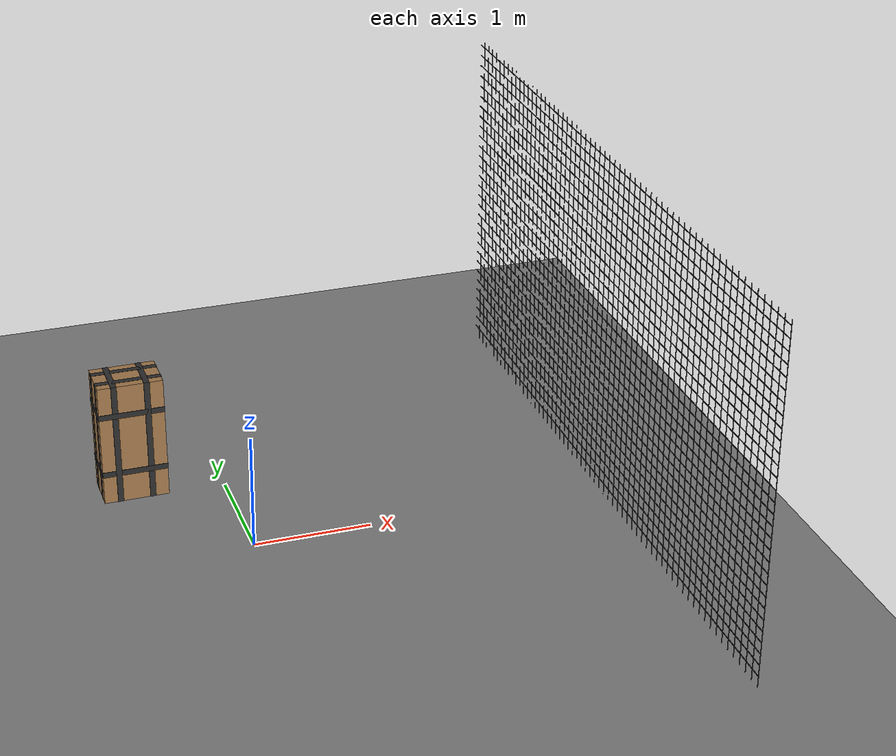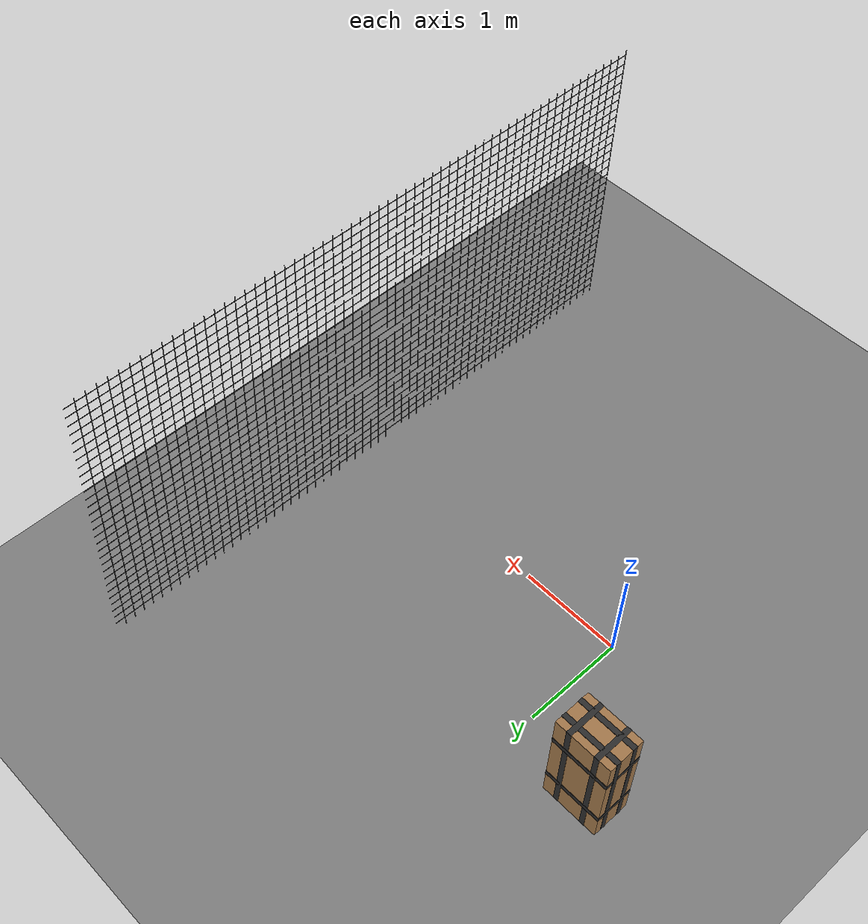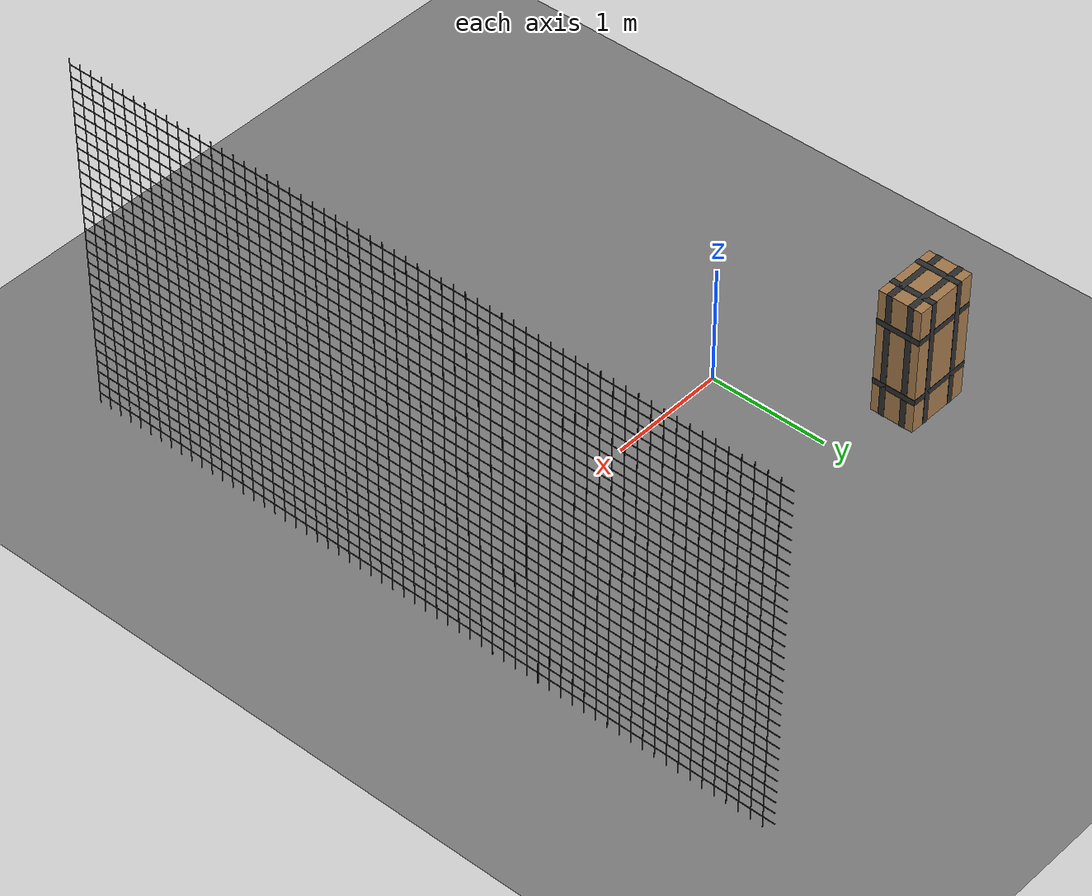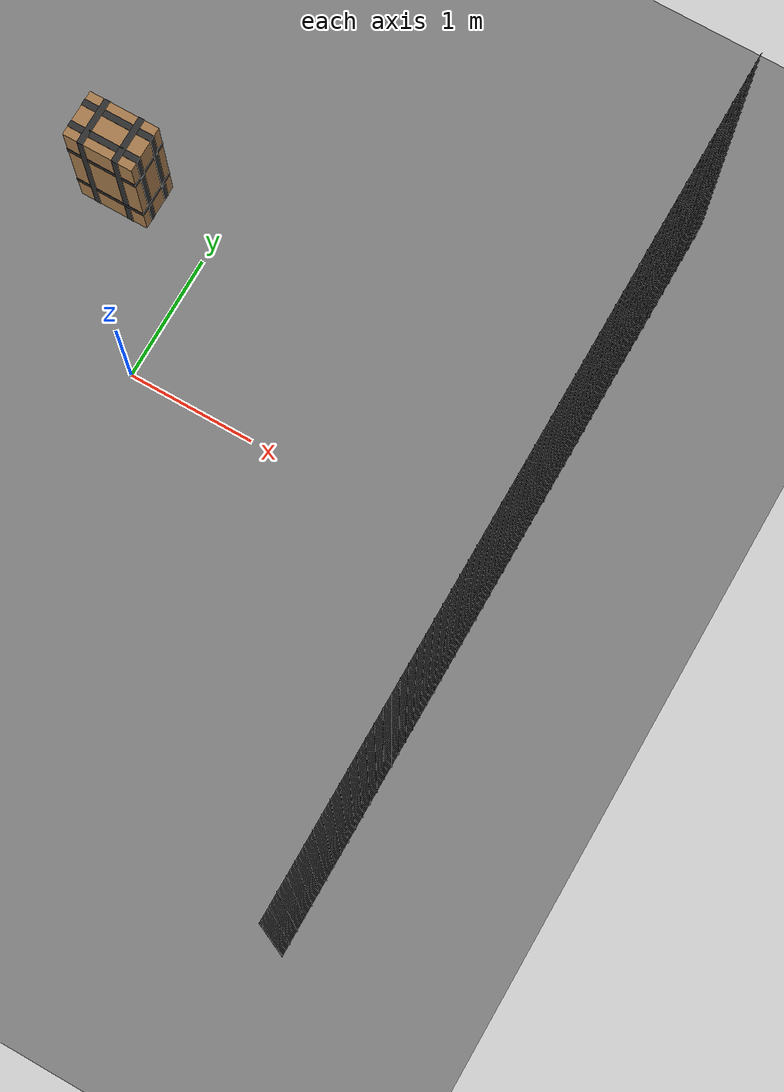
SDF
<sdf version="1.9">
 <world name="ecps295_lowbox_s32">
  <model name="ground_plane">
   <static>true</static>
   <link name="link">
    <collision name="collision">
     <geometry><plane><normal>0 0 1</normal><size>50 50</size></plane></geometry>
    </collision>
    <visual name="visual">
     <geometry><plane><normal>0 0 1</normal><size>50 50</size></plane></geometry>
     <material><ambient>0.5 0.5 0.5 1</ambient><diffuse>0.5 0.5 0.5 1</diffuse></material>
    </visual>
   </link>
  </model>
  <model name="net_e">
   <static>true</static>
   <link name="link">
    <collision name="c">
     <pose>3.050 0.000 1.525 0 0 0</pose>
     <geometry><box><size>0.020 6.100 3.050</size></box></geometry>
    </collision>
    <visual name="v0">
     <pose>3.050 -3.050 1.525 0 0 0.0000</pose>
     <geometry><box><size>0.004 0.004 3.050</size></box></geometry>
     <material><ambient>0.16 0.16 0.16 1</ambient><diffuse>0.16 0.16 0.16 1</diffuse></material>
    </visual>
    <visual name="v1">
     <pose>3.050 -2.950 1.525 0 0 0.0000</pose>
     <geometry><box><size>0.004 0.004 3.050</size></box></geometry>
     <material><ambient>0.16 0.16 0.16 1</ambient><diffuse>0.16 0.16 0.16 1</diffuse></material>
    </visual>
    <visual name="v2">
     <pose>3.050 -2.850 1.525 0 0 0.0000</pose>
     <geometry><box><size>0.004 0.004 3.050</size></box></geometry>
     <material><ambient>0.16 0.16 0.16 1</ambient><diffuse>0.16 0.16 0.16 1</diffuse></material>
    </visual>
    <visual name="v3">
     <pose>3.050 -2.750 1.525 0 0 0.0000</pose>
     <geometry><box><size>0.004 0.004 3.050</size></box></geometry>
     <material><ambient>0.16 0.16 0.16 1</ambient><diffuse>0.16 0.16 0.16 1</diffuse></material>
    </visual>
    <visual name="v4">
     <pose>3.050 -2.650 1.525 0 0 0.0000</pose>
     <geometry><box><size>0.004 0.004 3.050</size></box></geometry>
     <material><ambient>0.16 0.16 0.16 1</ambient><diffuse>0.16 0.16 0.16 1</diffuse></material>
    </visual>
    <visual name="v5">
     <pose>3.050 -2.550 1.525 0 0 0.0000</pose>
     <geometry><box><size>0.004 0.004 3.050</size></box></geometry>
     <material><ambient>0.16 0.16 0.16 1</ambient><diffuse>0.16 0.16 0.16 1</diffuse></material>
    </visual>
    <visual name="v6">
     <pose>3.050 -2.450 1.525 0 0 0.0000</pose>
     <geometry><box><size>0.004 0.004 3.050</size></box></geometry>
     <material><ambient>0.16 0.16 0.16 1</ambient><diffuse>0.16 0.16 0.16 1</diffuse></material>
    </visual>
    <visual name="v7">
     <pose>3.050 -2.350 1.525 0 0 0.0000</pose>
     <geometry><box><size>0.004 0.004 3.050</size></box></geometry>
     <material><ambient>0.16 0.16 0.16 1</ambient><diffuse>0.16 0.16 0.16 1</diffuse></material>
    </visual>
    <visual name="v8">
     <pose>3.050 -2.250 1.525 0 0 0.0000</pose>
     <geometry><box><size>0.004 0.004 3.050</size></box></geometry>
     <material><ambient>0.16 0.16 0.16 1</ambient><diffuse>0.16 0.16 0.16 1</diffuse></material>
    </visual>
    <visual name="v9">
     <pose>3.050 -2.150 1.525 0 0 0.0000</pose>
     <geometry><box><size>0.004 0.004 3.050</size></box></geometry>
     <material><ambient>0.16 0.16 0.16 1</ambient><diffuse>0.16 0.16 0.16 1</diffuse></material>
    </visual>
    <visual name="v10">
     <pose>3.050 -2.050 1.525 0 0 0.0000</pose>
     <geometry><box><size>0.004 0.004 3.050</size></box></geometry>
     <material><ambient>0.16 0.16 0.16 1</ambient><diffuse>0.16 0.16 0.16 1</diffuse></material>
    </visual>
    <visual name="v11">
     <pose>3.050 -1.950 1.525 0 0 0.0000</pose>
     <geometry><box><size>0.004 0.004 3.050</size></box></geometry>
     <material><ambient>0.16 0.16 0.16 1</ambient><diffuse>0.16 0.16 0.16 1</diffuse></material>
    </visual>
    <visual name="v12">
     <pose>3.050 -1.850 1.525 0 0 0.0000</pose>
     <geometry><box><size>0.004 0.004 3.050</size></box></geometry>
     <material><ambient>0.16 0.16 0.16 1</ambient><diffuse>0.16 0.16 0.16 1</diffuse></material>
    </visual>
    <visual name="v13">
     <pose>3.050 -1.750 1.525 0 0 0.0000</pose>
     <geometry><box><size>0.004 0.004 3.050</size></box></geometry>
     <material><ambient>0.16 0.16 0.16 1</ambient><diffuse>0.16 0.16 0.16 1</diffuse></material>
    </visual>
    <visual name="v14">
     <pose>3.050 -1.650 1.525 0 0 0.0000</pose>
     <geometry><box><size>0.004 0.004 3.050</size></box></geometry>
     <material><ambient>0.16 0.16 0.16 1</ambient><diffuse>0.16 0.16 0.16 1</diffuse></material>
    </visual>
    <visual name="v15">
     <pose>3.050 -1.550 1.525 0 0 0.0000</pose>
     <geometry><box><size>0.004 0.004 3.050</size></box></geometry>
     <material><ambient>0.16 0.16 0.16 1</ambient><diffuse>0.16 0.16 0.16 1</diffuse></material>
    </visual>
    <visual name="v16">
     <pose>3.050 -1.450 1.525 0 0 0.0000</pose>
     <geometry><box><size>0.004 0.004 3.050</size></box></geometry>
     <material><ambient>0.16 0.16 0.16 1</ambient><diffuse>0.16 0.16 0.16 1</diffuse></material>
    </visual>
    <visual name="v17">
     <pose>3.050 -1.350 1.525 0 0 0.0000</pose>
     <geometry><box><size>0.004 0.004 3.050</size></box></geometry>
     <material><ambient>0.16 0.16 0.16 1</ambient><diffuse>0.16 0.16 0.16 1</diffuse></material>
    </visual>
    <visual name="v18">
     <pose>3.050 -1.250 1.525 0 0 0.0000</pose>
     <geometry><box><size>0.004 0.004 3.050</size></box></geometry>
     <material><ambient>0.16 0.16 0.16 1</ambient><diffuse>0.16 0.16 0.16 1</diffuse></material>
    </visual>
    <visual name="v19">
     <pose>3.050 -1.150 1.525 0 0 0.0000</pose>
     <geometry><box><size>0.004 0.004 3.050</size></box></geometry>
     <material><ambient>0.16 0.16 0.16 1</ambient><diffuse>0.16 0.16 0.16 1</diffuse></material>
    </visual>
    <visual name="v20">
     <pose>3.050 -1.050 1.525 0 0 0.0000</pose>
     <geometry><box><size>0.004 0.004 3.050</size></box></geometry>
     <material><ambient>0.16 0.16 0.16 1</ambient><diffuse>0.16 0.16 0.16 1</diffuse></material>
    </visual>
    <visual name="v21">
     <pose>3.050 -0.950 1.525 0 0 0.0000</pose>
     <geometry><box><size>0.004 0.004 3.050</size></box></geometry>
     <material><ambient>0.16 0.16 0.16 1</ambient><diffuse>0.16 0.16 0.16 1</diffuse></material>
    </visual>
    <visual name="v22">
     <pose>3.050 -0.850 1.525 0 0 0.0000</pose>
     <geometry><box><size>0.004 0.004 3.050</size></box></geometry>
     <material><ambient>0.16 0.16 0.16 1</ambient><diffuse>0.16 0.16 0.16 1</diffuse></material>
    </visual>
    <visual name="v23">
     <pose>3.050 -0.750 1.525 0 0 0.0000</pose>
     <geometry><box><size>0.004 0.004 3.050</size></box></geometry>
     <material><ambient>0.16 0.16 0.16 1</ambient><diffuse>0.16 0.16 0.16 1</diffuse></material>
    </visual>
    <visual name="v24">
     <pose>3.050 -0.650 1.525 0 0 0.0000</pose>
     <geometry><box><size>0.004 0.004 3.050</size></box></geometry>
     <material><ambient>0.16 0.16 0.16 1</ambient><diffuse>0.16 0.16 0.16 1</diffuse></material>
    </visual>
    <visual name="v25">
     <pose>3.050 -0.550 1.525 0 0 0.0000</pose>
     <geometry><box><size>0.004 0.004 3.050</size></box></geometry>
     <material><ambient>0.16 0.16 0.16 1</ambient><diffuse>0.16 0.16 0.16 1</diffuse></material>
    </visual>
    <visual name="v26">
     <pose>3.050 -0.450 1.525 0 0 0.0000</pose>
     <geometry><box><size>0.004 0.004 3.050</size></box></geometry>
     <material><ambient>0.16 0.16 0.16 1</ambient><diffuse>0.16 0.16 0.16 1</diffuse></material>
    </visual>
    <visual name="v27">
     <pose>3.050 -0.350 1.525 0 0 0.0000</pose>
     <geometry><box><size>0.004 0.004 3.050</size></box></geometry>
     <material><ambient>0.16 0.16 0.16 1</ambient><diffuse>0.16 0.16 0.16 1</diffuse></material>
    </visual>
    <visual name="v28">
     <pose>3.050 -0.250 1.525 0 0 0.0000</pose>
     <geometry><box><size>0.004 0.004 3.050</size></box></geometry>
     <material><ambient>0.16 0.16 0.16 1</ambient><diffuse>0.16 0.16 0.16 1</diffuse></material>
    </visual>
    <visual name="v29">
     <pose>3.050 -0.150 1.525 0 0 0.0000</pose>
     <geometry><box><size>0.004 0.004 3.050</size></box></geometry>
     <material><ambient>0.16 0.16 0.16 1</ambient><diffuse>0.16 0.16 0.16 1</diffuse></material>
    </visual>
    <visual name="v30">
     <pose>3.050 -0.050 1.525 0 0 0.0000</pose>
     <geometry><box><size>0.004 0.004 3.050</size></box></geometry>
     <material><ambient>0.16 0.16 0.16 1</ambient><diffuse>0.16 0.16 0.16 1</diffuse></material>
    </visual>
    <visual name="v31">
     <pose>3.050 0.050 1.525 0 0 0.0000</pose>
     <geometry><box><size>0.004 0.004 3.050</size></box></geometry>
     <material><ambient>0.16 0.16 0.16 1</ambient><diffuse>0.16 0.16 0.16 1</diffuse></material>
    </visual>
    <visual name="v32">
     <pose>3.050 0.150 1.525 0 0 0.0000</pose>
     <geometry><box><size>0.004 0.004 3.050</size></box></geometry>
     <material><ambient>0.16 0.16 0.16 1</ambient><diffuse>0.16 0.16 0.16 1</diffuse></material>
    </visual>
    <visual name="v33">
     <pose>3.050 0.250 1.525 0 0 0.0000</pose>
     <geometry><box><size>0.004 0.004 3.050</size></box></geometry>
     <material><ambient>0.16 0.16 0.16 1</ambient><diffuse>0.16 0.16 0.16 1</diffuse></material>
    </visual>
    <visual name="v34">
     <pose>3.050 0.350 1.525 0 0 0.0000</pose>
     <geometry><box><size>0.004 0.004 3.050</size></box></geometry>
     <material><ambient>0.16 0.16 0.16 1</ambient><diffuse>0.16 0.16 0.16 1</diffuse></material>
    </visual>
    <visual name="v35">
     <pose>3.050 0.450 1.525 0 0 0.0000</pose>
     <geometry><box><size>0.004 0.004 3.050</size></box></geometry>
     <material><ambient>0.16 0.16 0.16 1</ambient><diffuse>0.16 0.16 0.16 1</diffuse></material>
    </visual>
    <visual name="v36">
     <pose>3.050 0.550 1.525 0 0 0.0000</pose>
     <geometry><box><size>0.004 0.004 3.050</size></box></geometry>
     <material><ambient>0.16 0.16 0.16 1</ambient><diffuse>0.16 0.16 0.16 1</diffuse></material>
    </visual>
    <visual name="v37">
     <pose>3.050 0.650 1.525 0 0 0.0000</pose>
     <geometry><box><size>0.004 0.004 3.050</size></box></geometry>
     <material><ambient>0.16 0.16 0.16 1</ambient><diffuse>0.16 0.16 0.16 1</diffuse></material>
    </visual>
    <visual name="v38">
     <pose>3.050 0.750 1.525 0 0 0.0000</pose>
     <geometry><box><size>0.004 0.004 3.050</size></box></geometry>
     <material><ambient>0.16 0.16 0.16 1</ambient><diffuse>0.16 0.16 0.16 1</diffuse></material>
    </visual>
    <visual name="v39">
     <pose>3.050 0.850 1.525 0 0 0.0000</pose>
     <geometry><box><size>0.004 0.004 3.050</size></box></geometry>
     <material><ambient>0.16 0.16 0.16 1</ambient><diffuse>0.16 0.16 0.16 1</diffuse></material>
    </visual>
    <visual name="v40">
     <pose>3.050 0.950 1.525 0 0 0.0000</pose>
     <geometry><box><size>0.004 0.004 3.050</size></box></geometry>
     <material><ambient>0.16 0.16 0.16 1</ambient><diffuse>0.16 0.16 0.16 1</diffuse></material>
    </visual>
    <visual name="v41">
     <pose>3.050 1.050 1.525 0 0 0.0000</pose>
     <geometry><box><size>0.004 0.004 3.050</size></box></geometry>
     <material><ambient>0.16 0.16 0.16 1</ambient><diffuse>0.16 0.16 0.16 1</diffuse></material>
    </visual>
    <visual name="v42">
     <pose>3.050 1.150 1.525 0 0 0.0000</pose>
     <geometry><box><size>0.004 0.004 3.050</size></box></geometry>
     <material><ambient>0.16 0.16 0.16 1</ambient><diffuse>0.16 0.16 0.16 1</diffuse></material>
    </visual>
    <visual name="v43">
     <pose>3.050 1.250 1.525 0 0 0.0000</pose>
     <geometry><box><size>0.004 0.004 3.050</size></box></geometry>
     <material><ambient>0.16 0.16 0.16 1</ambient><diffuse>0.16 0.16 0.16 1</diffuse></material>
    </visual>
    <visual name="v44">
     <pose>3.050 1.350 1.525 0 0 0.0000</pose>
     <geometry><box><size>0.004 0.004 3.050</size></box></geometry>
     <material><ambient>0.16 0.16 0.16 1</ambient><diffuse>0.16 0.16 0.16 1</diffuse></material>
    </visual>
    <visual name="v45">
     <pose>3.050 1.450 1.525 0 0 0.0000</pose>
     <geometry><box><size>0.004 0.004 3.050</size></box></geometry>
     <material><ambient>0.16 0.16 0.16 1</ambient><diffuse>0.16 0.16 0.16 1</diffuse></material>
    </visual>
    <visual name="v46">
     <pose>3.050 1.550 1.525 0 0 0.0000</pose>
     <geometry><box><size>0.004 0.004 3.050</size></box></geometry>
     <material><ambient>0.16 0.16 0.16 1</ambient><diffuse>0.16 0.16 0.16 1</diffuse></material>
    </visual>
    <visual name="v47">
     <pose>3.050 1.650 1.525 0 0 0.0000</pose>
     <geometry><box><size>0.004 0.004 3.050</size></box></geometry>
     <material><ambient>0.16 0.16 0.16 1</ambient><diffuse>0.16 0.16 0.16 1</diffuse></material>
    </visual>
    <visual name="v48">
     <pose>3.050 1.750 1.525 0 0 0.0000</pose>
     <geometry><box><size>0.004 0.004 3.050</size></box></geometry>
     <material><ambient>0.16 0.16 0.16 1</ambient><diffuse>0.16 0.16 0.16 1</diffuse></material>
    </visual>
    <visual name="v49">
     <pose>3.050 1.850 1.525 0 0 0.0000</pose>
     <geometry><box><size>0.004 0.004 3.050</size></box></geometry>
     <material><ambient>0.16 0.16 0.16 1</ambient><diffuse>0.16 0.16 0.16 1</diffuse></material>
    </visual>
    <visual name="v50">
     <pose>3.050 1.950 1.525 0 0 0.0000</pose>
     <geometry><box><size>0.004 0.004 3.050</size></box></geometry>
     <material><ambient>0.16 0.16 0.16 1</ambient><diffuse>0.16 0.16 0.16 1</diffuse></material>
    </visual>
    <visual name="v51">
     <pose>3.050 2.050 1.525 0 0 0.0000</pose>
     <geometry><box><size>0.004 0.004 3.050</size></box></geometry>
     <material><ambient>0.16 0.16 0.16 1</ambient><diffuse>0.16 0.16 0.16 1</diffuse></material>
    </visual>
    <visual name="v52">
     <pose>3.050 2.150 1.525 0 0 0.0000</pose>
     <geometry><box><size>0.004 0.004 3.050</size></box></geometry>
     <material><ambient>0.16 0.16 0.16 1</ambient><diffuse>0.16 0.16 0.16 1</diffuse></material>
    </visual>
    <visual name="v53">
     <pose>3.050 2.250 1.525 0 0 0.0000</pose>
     <geometry><box><size>0.004 0.004 3.050</size></box></geometry>
     <material><ambient>0.16 0.16 0.16 1</ambient><diffuse>0.16 0.16 0.16 1</diffuse></material>
    </visual>
    <visual name="v54">
     <pose>3.050 2.350 1.525 0 0 0.0000</pose>
     <geometry><box><size>0.004 0.004 3.050</size></box></geometry>
     <material><ambient>0.16 0.16 0.16 1</ambient><diffuse>0.16 0.16 0.16 1</diffuse></material>
    </visual>
    <visual name="v55">
     <pose>3.050 2.450 1.525 0 0 0.0000</pose>
     <geometry><box><size>0.004 0.004 3.050</size></box></geometry>
     <material><ambient>0.16 0.16 0.16 1</ambient><diffuse>0.16 0.16 0.16 1</diffuse></material>
    </visual>
    <visual name="v56">
     <pose>3.050 2.550 1.525 0 0 0.0000</pose>
     <geometry><box><size>0.004 0.004 3.050</size></box></geometry>
     <material><ambient>0.16 0.16 0.16 1</ambient><diffuse>0.16 0.16 0.16 1</diffuse></material>
    </visual>
    <visual name="v57">
     <pose>3.050 2.650 1.525 0 0 0.0000</pose>
     <geometry><box><size>0.004 0.004 3.050</size></box></geometry>
     <material><ambient>0.16 0.16 0.16 1</ambient><diffuse>0.16 0.16 0.16 1</diffuse></material>
    </visual>
    <visual name="v58">
     <pose>3.050 2.750 1.525 0 0 0.0000</pose>
     <geometry><box><size>0.004 0.004 3.050</size></box></geometry>
     <material><ambient>0.16 0.16 0.16 1</ambient><diffuse>0.16 0.16 0.16 1</diffuse></material>
    </visual>
    <visual name="v59">
     <pose>3.050 2.850 1.525 0 0 0.0000</pose>
     <geometry><box><size>0.004 0.004 3.050</size></box></geometry>
     <material><ambient>0.16 0.16 0.16 1</ambient><diffuse>0.16 0.16 0.16 1</diffuse></material>
    </visual>
    <visual name="v60">
     <pose>3.050 2.950 1.525 0 0 0.0000</pose>
     <geometry><box><size>0.004 0.004 3.050</size></box></geometry>
     <material><ambient>0.16 0.16 0.16 1</ambient><diffuse>0.16 0.16 0.16 1</diffuse></material>
    </visual>
    <visual name="h1">
     <pose>3.050 0.000 0.100 0 0 0.0000</pose>
     <geometry><box><size>0.004 6.100 0.004</size></box></geometry>
     <material><ambient>0.16 0.16 0.16 1</ambient><diffuse>0.16 0.16 0.16 1</diffuse></material>
    </visual>
    <visual name="h2">
     <pose>3.050 0.000 0.200 0 0 0.0000</pose>
     <geometry><box><size>0.004 6.100 0.004</size></box></geometry>
     <material><ambient>0.16 0.16 0.16 1</ambient><diffuse>0.16 0.16 0.16 1</diffuse></material>
    </visual>
    <visual name="h3">
     <pose>3.050 0.000 0.300 0 0 0.0000</pose>
     <geometry><box><size>0.004 6.100 0.004</size></box></geometry>
     <material><ambient>0.16 0.16 0.16 1</ambient><diffuse>0.16 0.16 0.16 1</diffuse></material>
    </visual>
    <visual name="h4">
     <pose>3.050 0.000 0.400 0 0 0.0000</pose>
     <geometry><box><size>0.004 6.100 0.004</size></box></geometry>
     <material><ambient>0.16 0.16 0.16 1</ambient><diffuse>0.16 0.16 0.16 1</diffuse></material>
    </visual>
    <visual name="h5">
     <pose>3.050 0.000 0.500 0 0 0.0000</pose>
     <geometry><box><size>0.004 6.100 0.004</size></box></geometry>
     <material><ambient>0.16 0.16 0.16 1</ambient><diffuse>0.16 0.16 0.16 1</diffuse></material>
    </visual>
    <visual name="h6">
     <pose>3.050 0.000 0.600 0 0 0.0000</pose>
     <geometry><box><size>0.004 6.100 0.004</size></box></geometry>
     <material><ambient>0.16 0.16 0.16 1</ambient><diffuse>0.16 0.16 0.16 1</diffuse></material>
    </visual>
    <visual name="h7">
     <pose>3.050 0.000 0.700 0 0 0.0000</pose>
     <geometry><box><size>0.004 6.100 0.004</size></box></geometry>
     <material><ambient>0.16 0.16 0.16 1</ambient><diffuse>0.16 0.16 0.16 1</diffuse></material>
    </visual>
    <visual name="h8">
     <pose>3.050 0.000 0.800 0 0 0.0000</pose>
     <geometry><box><size>0.004 6.100 0.004</size></box></geometry>
     <material><ambient>0.16 0.16 0.16 1</ambient><diffuse>0.16 0.16 0.16 1</diffuse></material>
    </visual>
    <visual name="h9">
     <pose>3.050 0.000 0.900 0 0 0.0000</pose>
     <geometry><box><size>0.004 6.100 0.004</size></box></geometry>
     <material><ambient>0.16 0.16 0.16 1</ambient><diffuse>0.16 0.16 0.16 1</diffuse></material>
    </visual>
    <visual name="h10">
     <pose>3.050 0.000 1.000 0 0 0.0000</pose>
     <geometry><box><size>0.004 6.100 0.004</size></box></geometry>
     <material><ambient>0.16 0.16 0.16 1</ambient><diffuse>0.16 0.16 0.16 1</diffuse></material>
    </visual>
    <visual name="h11">
     <pose>3.050 0.000 1.100 0 0 0.0000</pose>
     <geometry><box><size>0.004 6.100 0.004</size></box></geometry>
     <material><ambient>0.16 0.16 0.16 1</ambient><diffuse>0.16 0.16 0.16 1</diffuse></material>
    </visual>
    <visual name="h12">
     <pose>3.050 0.000 1.200 0 0 0.0000</pose>
     <geometry><box><size>0.004 6.100 0.004</size></box></geometry>
     <material><ambient>0.16 0.16 0.16 1</ambient><diffuse>0.16 0.16 0.16 1</diffuse></material>
    </visual>
    <visual name="h13">
     <pose>3.050 0.000 1.300 0 0 0.0000</pose>
     <geometry><box><size>0.004 6.100 0.004</size></box></geometry>
     <material><ambient>0.16 0.16 0.16 1</ambient><diffuse>0.16 0.16 0.16 1</diffuse></material>
    </visual>
    <visual name="h14">
     <pose>3.050 0.000 1.400 0 0 0.0000</pose>
     <geometry><box><size>0.004 6.100 0.004</size></box></geometry>
     <material><ambient>0.16 0.16 0.16 1</ambient><diffuse>0.16 0.16 0.16 1</diffuse></material>
    </visual>
    <visual name="h15">
     <pose>3.050 0.000 1.500 0 0 0.0000</pose>
     <geometry><box><size>0.004 6.100 0.004</size></box></geometry>
     <material><ambient>0.16 0.16 0.16 1</ambient><diffuse>0.16 0.16 0.16 1</diffuse></material>
    </visual>
    <visual name="h16">
     <pose>3.050 0.000 1.600 0 0 0.0000</pose>
     <geometry><box><size>0.004 6.100 0.004</size></box></geometry>
     <material><ambient>0.16 0.16 0.16 1</ambient><diffuse>0.16 0.16 0.16 1</diffuse></material>
    </visual>
    <visual name="h17">
     <pose>3.050 0.000 1.700 0 0 0.0000</pose>
     <geometry><box><size>0.004 6.100 0.004</size></box></geometry>
     <material><ambient>0.16 0.16 0.16 1</ambient><diffuse>0.16 0.16 0.16 1</diffuse></material>
    </visual>
    <visual name="h18">
     <pose>3.050 0.000 1.800 0 0 0.0000</pose>
     <geometry><box><size>0.004 6.100 0.004</size></box></geometry>
     <material><ambient>0.16 0.16 0.16 1</ambient><diffuse>0.16 0.16 0.16 1</diffuse></material>
    </visual>
    <visual name="h19">
     <pose>3.050 0.000 1.900 0 0 0.0000</pose>
     <geometry><box><size>0.004 6.100 0.004</size></box></geometry>
     <material><ambient>0.16 0.16 0.16 1</ambient><diffuse>0.16 0.16 0.16 1</diffuse></material>
    </visual>
    <visual name="h20">
     <pose>3.050 0.000 2.000 0 0 0.0000</pose>
     <geometry><box><size>0.004 6.100 0.004</size></box></geometry>
     <material><ambient>0.16 0.16 0.16 1</ambient><diffuse>0.16 0.16 0.16 1</diffuse></material>
    </visual>
    <visual name="h21">
     <pose>3.050 0.000 2.100 0 0 0.0000</pose>
     <geometry><box><size>0.004 6.100 0.004</size></box></geometry>
     <material><ambient>0.16 0.16 0.16 1</ambient><diffuse>0.16 0.16 0.16 1</diffuse></material>
    </visual>
    <visual name="h22">
     <pose>3.050 0.000 2.200 0 0 0.0000</pose>
     <geometry><box><size>0.004 6.100 0.004</size></box></geometry>
     <material><ambient>0.16 0.16 0.16 1</ambient><diffuse>0.16 0.16 0.16 1</diffuse></material>
    </visual>
    <visual name="h23">
     <pose>3.050 0.000 2.300 0 0 0.0000</pose>
     <geometry><box><size>0.004 6.100 0.004</size></box></geometry>
     <material><ambient>0.16 0.16 0.16 1</ambient><diffuse>0.16 0.16 0.16 1</diffuse></material>
    </visual>
    <visual name="h24">
     <pose>3.050 0.000 2.400 0 0 0.0000</pose>
     <geometry><box><size>0.004 6.100 0.004</size></box></geometry>
     <material><ambient>0.16 0.16 0.16 1</ambient><diffuse>0.16 0.16 0.16 1</diffuse></material>
    </visual>
    <visual name="h25">
     <pose>3.050 0.000 2.500 0 0 0.0000</pose>
     <geometry><box><size>0.004 6.100 0.004</size></box></geometry>
     <material><ambient>0.16 0.16 0.16 1</ambient><diffuse>0.16 0.16 0.16 1</diffuse></material>
    </visual>
    <visual name="h26">
     <pose>3.050 0.000 2.600 0 0 0.0000</pose>
     <geometry><box><size>0.004 6.100 0.004</size></box></geometry>
     <material><ambient>0.16 0.16 0.16 1</ambient><diffuse>0.16 0.16 0.16 1</diffuse></material>
    </visual>
    <visual name="h27">
     <pose>3.050 0.000 2.700 0 0 0.0000</pose>
     <geometry><box><size>0.004 6.100 0.004</size></box></geometry>
     <material><ambient>0.16 0.16 0.16 1</ambient><diffuse>0.16 0.16 0.16 1</diffuse></material>
    </visual>
    <visual name="h28">
     <pose>3.050 0.000 2.800 0 0 0.0000</pose>
     <geometry><box><size>0.004 6.100 0.004</size></box></geometry>
     <material><ambient>0.16 0.16 0.16 1</ambient><diffuse>0.16 0.16 0.16 1</diffuse></material>
    </visual>
    <visual name="h29">
     <pose>3.050 0.000 2.900 0 0 0.0000</pose>
     <geometry><box><size>0.004 6.100 0.004</size></box></geometry>
     <material><ambient>0.16 0.16 0.16 1</ambient><diffuse>0.16 0.16 0.16 1</diffuse></material>
    </visual>
    <visual name="h30">
     <pose>3.050 0.000 3.000 0 0 0.0000</pose>
     <geometry><box><size>0.004 6.100 0.004</size></box></geometry>
     <material><ambient>0.16 0.16 0.16 1</ambient><diffuse>0.16 0.16 0.16 1</diffuse></material>
    </visual>
   </link>
  </model>
  <model name="lb5">
   <static>true</static>
   <pose>-0.77 1.21 0.55 0 0 0</pose>
   <link name="link">
    <collision name="c"><geometry><box><size>0.56 0.37 1.1</size></box></geometry></collision>
    <visual name="v">
     <geometry><box><size>0.56 0.37 1.1</size></box></geometry>
     <material><ambient>0.65 0.48 0.30 1</ambient><diffuse>0.65 0.48 0.30 1</diffuse></material>
    </visual>
    <visual name="tape_ring0">
     <pose>0.000 0.000 -0.275 0 0 0</pose>
     <geometry><box><size>0.564 0.374 0.050</size></box></geometry>
     <material><ambient>0.18 0.18 0.18 1</ambient><diffuse>0.18 0.18 0.18 1</diffuse></material>
    </visual>
    <visual name="tape_bx0">
     <pose>-0.140 0.000 0.000 0 0 0</pose>
     <geometry><box><size>0.050 0.374 1.104</size></box></geometry>
     <material><ambient>0.18 0.18 0.18 1</ambient><diffuse>0.18 0.18 0.18 1</diffuse></material>
    </visual>
    <visual name="tape_by0">
     <pose>0.000 -0.092 0.000 0 0 0</pose>
     <geometry><box><size>0.564 0.050 1.104</size></box></geometry>
     <material><ambient>0.18 0.18 0.18 1</ambient><diffuse>0.18 0.18 0.18 1</diffuse></material>
    </visual>
    <visual name="tape_ring1">
     <pose>0.000 0.000 0.275 0 0 0</pose>
     <geometry><box><size>0.564 0.374 0.050</size></box></geometry>
     <material><ambient>0.18 0.18 0.18 1</ambient><diffuse>0.18 0.18 0.18 1</diffuse></material>
    </visual>
    <visual name="tape_bx1">
     <pose>0.140 0.000 0.000 0 0 0</pose>
     <geometry><box><size>0.050 0.374 1.104</size></box></geometry>
     <material><ambient>0.18 0.18 0.18 1</ambient><diffuse>0.18 0.18 0.18 1</diffuse></material>
    </visual>
    <visual name="tape_by1">
     <pose>0.000 0.092 0.000 0 0 0</pose>
     <geometry><box><size>0.564 0.050 1.104</size></box></geometry>
     <material><ambient>0.18 0.18 0.18 1</ambient><diffuse>0.18 0.18 0.18 1</diffuse></material>
    </visual>
   </link>
  </model>
 </world>
</sdf>
